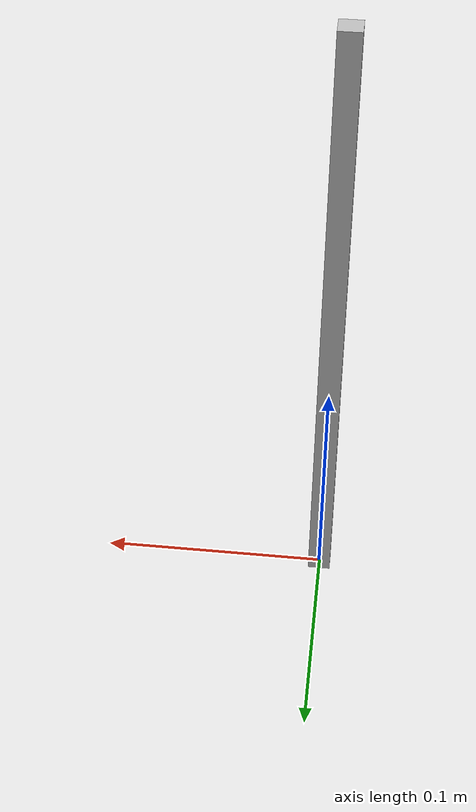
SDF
<?xml version='1.0'?>
<sdf version="1.4">
<model name="stake">
  <pose>0 0 0.14 0 0 0</pose>
  <static>true</static>
    <link name="link">
      <inertial>
        <mass>0.05</mass>
        <inertia> <!-- interias are tricky to compute -->
          <!-- http://answers.gazebosim.org/question/4372/the-inertia-matrix-explained/ -->
          <ixx>0.0065155</ixx>       <!-- for a box: ixx = 0.083 * mass * (y*y + z*z) -->
          <ixy>0.0</ixy>         <!-- for a box: ixy = 0 -->
          <ixz>0.0</ixz>         <!-- for a box: ixz = 0 -->
          <iyy>0.0065155</iyy>       <!-- for a box: iyy = 0.083 * mass * (x*x + z*z) -->
          <iyz>0.0</iyz>         <!-- for a box: iyz = 0 -->
          <izz>0.0000166</izz>       <!-- for a box: izz = 0.083 * mass * (x*x + y*y) -->
        </inertia>
      </inertial>
      <collision name="collision">
        <geometry>
          <box>
            <size>0.01 0.01 0.28</size>
          </box>
        </geometry>
      </collision>
      <visual name="visual">
        <geometry>
          <box>
            <size>0.01 0.01 0.28</size>
          </box>
        </geometry>
      </visual>
    </link>
  </model>
</sdf>
